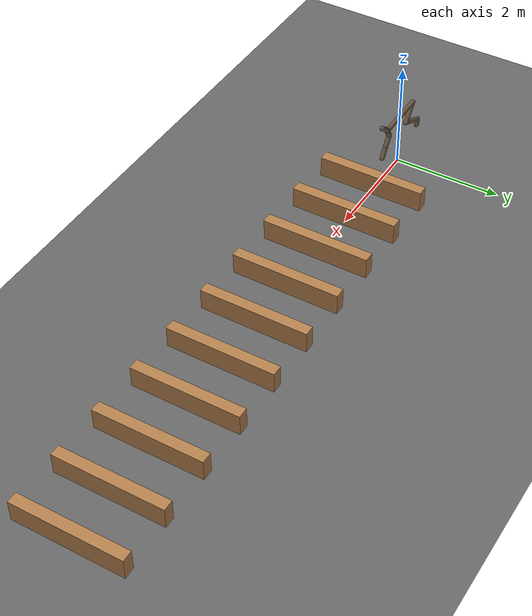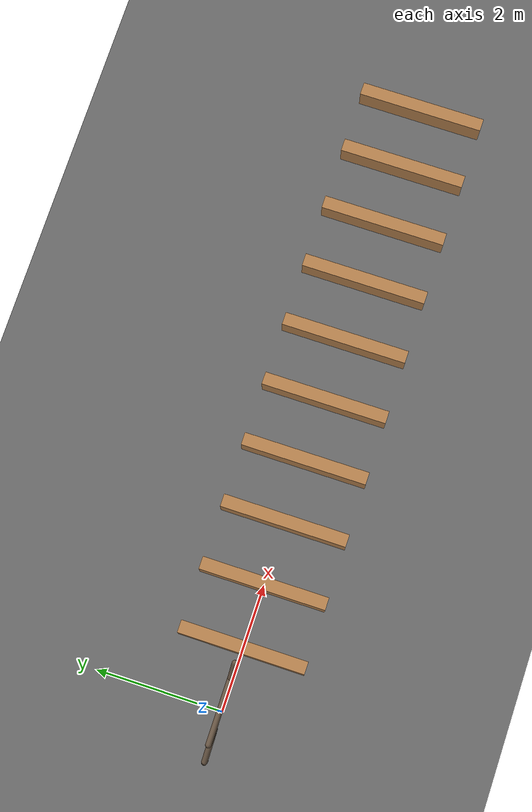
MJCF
<?xml version="1.0" encoding="utf-8"?>
<mujoco model="cheetah">
	<compiler angle="radian" coordinate="local" inertiafromgeom="true" settotalmass="14"></compiler>
	<default>
		<joint armature=".1" damping=".01" limited="true" solimplimit="0 .8 .03" solreflimit=".02 1" stiffness="8"></joint>
		<geom conaffinity="0" condim="3" contype="0" friction=".4 .1 .1" solimp="0.0 0.8 0.01" solref="0.02 1" rgba="0.4 0.33 0.26 1.0"></geom>
		<motor ctrllimited="true" ctrlrange="-1 1"></motor>
	</default>
	<size nstack="300000" nuser_geom="1"></size>
	<option gravity="0 0 -9.81" timestep="0.01" iterations="4"></option>
	<custom>
		<numeric data="10000" name="constraint_limit_stiffness"></numeric>
		<numeric data="20000" name="constraint_stiffness"></numeric>
		<numeric data="10 2 2 2 10 2 1" name="constraint_ang_damping"></numeric>
		<numeric data="10" name="constraint_vel_damping"></numeric>
		<numeric data="-0.01" name="ang_damping"></numeric>
		<numeric data="0.2" name="baumgarte_erp"></numeric>
		<numeric data="0.3" name="spring_mass_scale"></numeric>
		<numeric data="0.8" name="spring_inertia_scale"></numeric>
		<numeric data="50" name="solver_maxls"></numeric>
	</custom>
	<asset>
		<texture builtin="gradient" height="100" rgb1="1 1 1" rgb2="0 0 0" type="skybox" width="100"></texture>
		<texture builtin="flat" height="1278" mark="cross" markrgb="1 1 1" name="texgeom" random="0.01" rgb1="0.8 0.6 0.4" rgb2="0.8 0.6 0.4" type="cube" width="127"></texture>
		<texture builtin="checker" height="100" name="texplane" rgb1="0 0 0" rgb2="0.8 0.8 0.8" type="2d" width="100"></texture>
		<material name="MatPlane" reflectance="0.5" shininess="1" specular="1" texrepeat="60 60" texture="texplane"></material>
		<material name="geom" texture="texgeom" texuniform="true"></material>
	</asset>
	<worldbody>
		<light cutoff="100" diffuse="1 1 1" dir="-0 0 -1.3" directional="true" exponent="1" pos="0 0 1.3" specular=".1 .1 .1"></light>
		<geom conaffinity="1" condim="3" material="MatPlane" name="floor" pos="0 0 0" size="40 40 40" type="plane" rgba="0.5 0.5 0.5 1.0"></geom>
		<body name="torso" pos="0 0 0.9991446527339944">
			<camera name="track" mode="trackcom" pos="0 -3 0.3" xyaxes="1 0 0 0 0 1"></camera>
			<joint armature="0" axis="1 0 0" damping="0" limited="false" name="rootx" pos="0 0 0" stiffness="0" type="slide"></joint>
			<joint armature="0" axis="0 0 1" damping="0" limited="false" name="rootz" pos="0 0 0" stiffness="0" type="slide"></joint>
			<joint armature="0" axis="0 1 0" damping="0" limited="false" name="rooty" pos="0 0 0" stiffness="0" type="hinge"></joint>
			<geom fromto="-.5 0 0 .5 0 0" name="torso" size="0.046" type="capsule"></geom>
			<geom contype="1" axisangle="0 1 0 .87" name="head" pos=".6 0 .1" size="0.046 .15" type="capsule"></geom>
			<body name="bthigh" pos="-.5 0 0">
				<joint axis="0 1 0" damping="6" name="bthigh" pos="0 0 0" range="-.52 1.05" stiffness="240" type="hinge"></joint>
				<geom contype="1" axisangle="0 1 0 -3.8" name="bthigh" pos="0.12908039176951064 0 -0.1678045093003638" size="0.046 0.1871665680657904" type="capsule"></geom>
				<body name="bshin" pos="0.206528626831217 0 -0.32270097942377657">
					<joint axis="0 1 0" damping="4.5" name="bshin" pos="0 0 0" range="-.785 .785" stiffness="180" type="hinge"></joint>
					<geom axisangle="0 1 0 -2.03" name="bshin" pos="-0.2389118368368901 0 -0.11945591841844505" size="0.046 0.2559769680395251" type="capsule"></geom>
					<body name="bfoot" pos="-0.4778236736737802 0 -0.2389118368368901">
						<joint axis="0 1 0" damping="3" name="bfoot" pos="0 0 0" range="-.4 .785" stiffness="120" type="hinge"></joint>
						<geom contype="1" axisangle="0 1 0 -.27" name="bfoot" pos="0.017215964617705685 0 -0.055664952263915046" size="0.046 0.05394335580214448" type="capsule"></geom>
					</body>
				</body>
			</body>
			<body name="fthigh" pos=".5 0 0">
				<joint axis="0 1 0" damping="4.5" name="fthigh" pos="0 0 0" range="-1 .7" stiffness="180" type="hinge"></joint>
				<geom contype="1" axisangle="0 1 0 .52" name="fthigh" pos="-0.04722753823591314 0 -0.08096149411870823" size="0.046 0.08973232264823497" type="capsule"></geom>
				<body name="fshin" pos="-0.09445507647182629 0 -0.16192298823741647">
					<joint axis="0 1 0" damping="3" name="fshin" pos="0 0 0" range="-1.2 .87" stiffness="120" type="hinge"></joint>
					<geom axisangle="0 1 0 -.6" name="fshin" pos="0.06334034115197579 0 -0.08770201082581262" size="0.046 0.1032934794170682" type="capsule"></geom>
					<body name="ffoot" pos="0.12668068230395158 0 -0.17540402165162525">
						<joint axis="0 1 0" damping="1.5" name="ffoot" pos="0 0 0" range="-.5 .5" stiffness="60" type="hinge"></joint>
						<geom contype="1" axisangle="0 1 0 -.6" name="ffoot" pos="0.0624777626304468 0 -0.09718763075847281" size="0.046 0.09718763075847281" type="capsule"></geom>
					</body>
				</body>
			</body>
		</body>
		<body name="obstacle_0" pos="1.0 0 0.2">
			<geom type="box" size="0.1 1.0 0.2" rgba="0.7 0.5 0.3 1.0" mass="0" contype="1" conaffinity="1"></geom>
		</body>
		<body name="obstacle_1" pos="2.0 0 0.2">
			<geom type="box" size="0.1 1.0 0.2" rgba="0.7 0.5 0.3 1.0" mass="0" contype="1" conaffinity="1"></geom>
		</body>
		<body name="obstacle_2" pos="3.0 0 0.2">
			<geom type="box" size="0.1 1.0 0.2" rgba="0.7 0.5 0.3 1.0" mass="0" contype="1" conaffinity="1"></geom>
		</body>
		<body name="obstacle_3" pos="4.0 0 0.2">
			<geom type="box" size="0.1 1.0 0.2" rgba="0.7 0.5 0.3 1.0" mass="0" contype="1" conaffinity="1"></geom>
		</body>
		<body name="obstacle_4" pos="5.0 0 0.2">
			<geom type="box" size="0.1 1.0 0.2" rgba="0.7 0.5 0.3 1.0" mass="0" contype="1" conaffinity="1"></geom>
		</body>
		<body name="obstacle_5" pos="6.0 0 0.2">
			<geom type="box" size="0.1 1.0 0.2" rgba="0.7 0.5 0.3 1.0" mass="0" contype="1" conaffinity="1"></geom>
		</body>
		<body name="obstacle_6" pos="7.0 0 0.2">
			<geom type="box" size="0.1 1.0 0.2" rgba="0.7 0.5 0.3 1.0" mass="0" contype="1" conaffinity="1"></geom>
		</body>
		<body name="obstacle_7" pos="8.0 0 0.2">
			<geom type="box" size="0.1 1.0 0.2" rgba="0.7 0.5 0.3 1.0" mass="0" contype="1" conaffinity="1"></geom>
		</body>
		<body name="obstacle_8" pos="9.0 0 0.2">
			<geom type="box" size="0.1 1.0 0.2" rgba="0.7 0.5 0.3 1.0" mass="0" contype="1" conaffinity="1"></geom>
		</body>
		<body name="obstacle_9" pos="10.0 0 0.2">
			<geom type="box" size="0.1 1.0 0.2" rgba="0.7 0.5 0.3 1.0" mass="0" contype="1" conaffinity="1"></geom>
		</body>
	</worldbody>
	<actuator>
		<motor gear="120" joint="bthigh" name="bthigh"></motor>
		<motor gear="90" joint="bshin" name="bshin"></motor>
		<motor gear="60" joint="bfoot" name="bfoot"></motor>
		<motor gear="120" joint="fthigh" name="fthigh"></motor>
		<motor gear="60" joint="fshin" name="fshin"></motor>
		<motor gear="30" joint="ffoot" name="ffoot"></motor>
	</actuator>
</mujoco>
